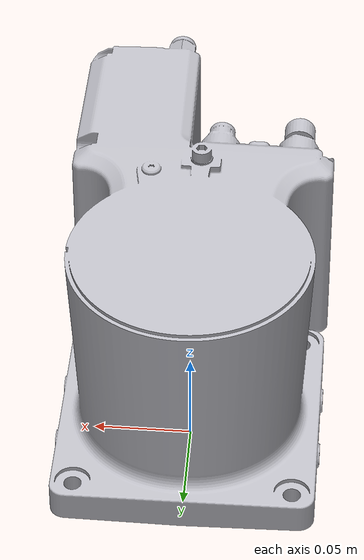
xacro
<?xml version="1.0" ?>
<robot name="IRB1010_1.5kg-370" xmlns:xacro="http://www.ros.org/wiki/xacro">

<xacro:include filename="$(find IRB1010_1.5kg-370_description)/urdf/materials.xacro" />
<xacro:include filename="$(find IRB1010_1.5kg-370_description)/urdf/IRB1010_1.5kg-370.trans" />
<xacro:include filename="$(find IRB1010_1.5kg-370_description)/urdf/IRB1010_1.5kg-370.gazebo" />
<link name="base_link">
  <inertial>
    <origin xyz="0.007414978279902329 -0.0483132373536217 0.05950830185044145" rpy="0 0 0"/>
    <mass value="20.582962138924515"/>
    <inertia ixx="0.107334" iyy="0.048566" izz="0.105477" ixy="0.014261" iyz="0.000746" ixz="0.000141"/>
  </inertial>
  <visual>
    <origin xyz="0 0 0" rpy="0 0 0"/>
    <geometry>
      <mesh filename="package://IRB1010_1.5kg-370_description/meshes/base_link.stl" scale="0.001 0.001 0.001"/>
    </geometry>
    <material name="silver"/>
  </visual>
  <collision>
    <origin xyz="0 0 0" rpy="0 0 0"/>
    <geometry>
      <mesh filename="package://IRB1010_1.5kg-370_description/meshes/base_link.stl" scale="0.001 0.001 0.001"/>
    </geometry>
  </collision>
</link>

</robot>

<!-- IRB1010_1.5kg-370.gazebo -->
<robot name="IRB1010_1.5kg-370" xmlns:xacro="http://www.ros.org/wiki/xacro" >

<xacro:property name="body_color" value="Gazebo/Silver" />

<gazebo>
  <plugin name="control" filename="libgazebo_ros_control.so"/>
</gazebo>
<gazebo reference="base_link">
  <material>${body_color}</material>
  <mu1>0.2</mu1>
  <mu2>0.2</mu2>
  <selfCollide>true</selfCollide>
  <gravity>true</gravity>
</gazebo>

</robot>
